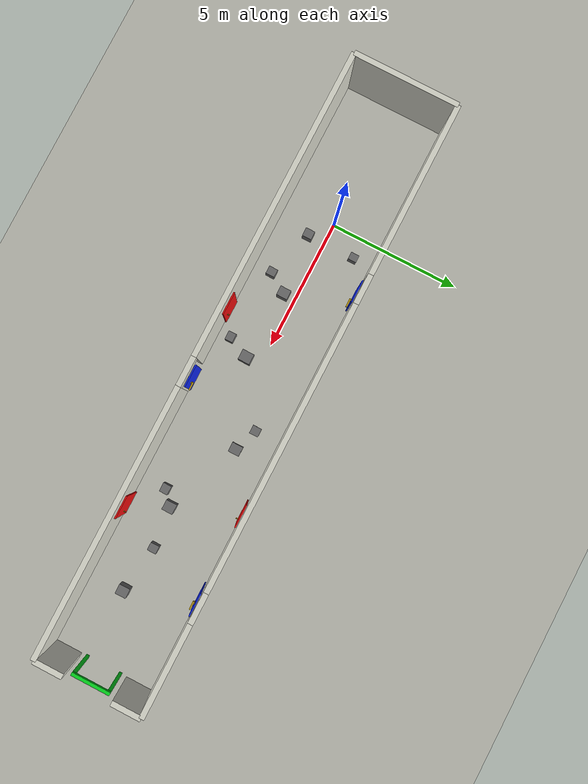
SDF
<?xml version='1.0' encoding='utf-8'?>
<sdf version="1.6">
  <world name="fire_corridor">
    <physics name="default_physics" type="ode">
      <max_step_size>0.001</max_step_size>
      <real_time_update_rate>1000</real_time_update_rate>
    </physics>
    <plugin name="gz::sim::systems::Physics" filename="gz-sim-physics-system" />
    <plugin name="gz::sim::systems::UserCommands" filename="gz-sim-user-commands-system" />
    <plugin name="gz::sim::systems::SceneBroadcaster" filename="gz-sim-scene-broadcaster-system" />
    <plugin name="gz::sim::systems::Sensors" filename="gz-sim-sensors-system"><render_engine>ogre2</render_engine></plugin>
    <light type="directional" name="sun">
      <cast_shadows>true</cast_shadows>
      <pose>6 0 10 0 0 0</pose>
      <diffuse>0.9 0.9 0.9 1</diffuse>
      <specular>0.3 0.3 0.3 1</specular>
      <direction>-0.5 0.1 -1</direction>
    </light>
    <light type="point" name="light_mid">
      <pose>8 0 2.8 0 0 0</pose>
      <diffuse>0.8 0.8 0.8 1</diffuse>
      <specular>0.1 0.1 0.1 1</specular>
      <attenuation><range>16</range><linear>0.05</linear></attenuation>
    </light>

    <model name="ground_plane">
      <static>true</static>
      <link name="link">
        <collision name="col"><geometry><plane><normal>0 0 1</normal><size>30 10</size></plane></geometry></collision>
        <visual name="vis"><geometry><plane><normal>0 0 1</normal><size>30 10</size></plane></geometry>
          <material><ambient>0.72 0.72 0.68 1</ambient><diffuse>0.72 0.72 0.68 1</diffuse></material>
        </visual>
      </link>
    </model>

    <model name="wall_south">
  <static>true</static>
  <pose>6.5 -2 1.25 0 0 0</pose>
  <link name="link">
    <collision name="collision_wall_0">
      <geometry>
        <box>
          <size>11.788571 0.200000 2.500000</size>
        </box>
      </geometry>
      <pose>-5.605714 0 0.000000 0 0 0</pose>
    </collision>
    <visual name="visual_wall_0">
      <geometry>
        <box>
          <size>11.788571 0.200000 2.500000</size>
        </box>
      </geometry>
      <material>
        <ambient>0.85 0.85 0.80 1</ambient>
        <diffuse>0.85 0.85 0.80 1</diffuse>
      </material>
      <pose>-5.605714 0 0.000000 0 0 0</pose>
    </visual>
    <collision name="collision_lintel_0">
      <geometry>
        <box>
          <size>1.116429 0.200000 0.450000</size>
        </box>
      </geometry>
      <pose>0.846786 0 1.025000 0 0 0</pose>
    </collision>
    <visual name="visual_lintel_0">
      <geometry>
        <box>
          <size>1.116429 0.200000 0.450000</size>
        </box>
      </geometry>
      <material>
        <ambient>0.85 0.85 0.80 1</ambient>
        <diffuse>0.85 0.85 0.80 1</diffuse>
      </material>
      <pose>0.846786 0 1.025000 0 0 0</pose>
    </visual>
    <collision name="collision_wall_end">
      <geometry>
        <box>
          <size>10.095000 0.200000 2.500000</size>
        </box>
      </geometry>
      <pose>6.452500 0 0.000000 0 0 0</pose>
    </collision>
    <visual name="visual_wall_end">
      <geometry>
        <box>
          <size>10.095000 0.200000 2.500000</size>
        </box>
      </geometry>
      <material>
        <ambient>0.85 0.85 0.80 1</ambient>
        <diffuse>0.85 0.85 0.80 1</diffuse>
      </material>
      <pose>6.452500 0 0.000000 0 0 0</pose>
    </visual>
  </link>
</model>
    <model name="wall_north">
  <static>true</static>
  <pose>6.5 2 1.25 0 0 0</pose>
  <link name="link">
    <collision name="collision_wall_0">
      <geometry>
        <box>
          <size>6.588571 0.200000 2.500000</size>
        </box>
      </geometry>
      <pose>-8.205714 0 0.000000 0 0 0</pose>
    </collision>
    <visual name="visual_wall_0">
      <geometry>
        <box>
          <size>6.588571 0.200000 2.500000</size>
        </box>
      </geometry>
      <material>
        <ambient>0.85 0.85 0.80 1</ambient>
        <diffuse>0.85 0.85 0.80 1</diffuse>
      </material>
      <pose>-8.205714 0 0.000000 0 0 0</pose>
    </visual>
    <collision name="collision_lintel_0">
      <geometry>
        <box>
          <size>1.116429 0.200000 0.450000</size>
        </box>
      </geometry>
      <pose>-4.353214 0 1.025000 0 0 0</pose>
    </collision>
    <visual name="visual_lintel_0">
      <geometry>
        <box>
          <size>1.116429 0.200000 0.450000</size>
        </box>
      </geometry>
      <material>
        <ambient>0.85 0.85 0.80 1</ambient>
        <diffuse>0.85 0.85 0.80 1</diffuse>
      </material>
      <pose>-4.353214 0 1.025000 0 0 0</pose>
    </visual>
    <collision name="collision_wall_1">
      <geometry>
        <box>
          <size>10.783571 0.200000 2.500000</size>
        </box>
      </geometry>
      <pose>1.596786 0 0.000000 0 0 0</pose>
    </collision>
    <visual name="visual_wall_1">
      <geometry>
        <box>
          <size>10.783571 0.200000 2.500000</size>
        </box>
      </geometry>
      <material>
        <ambient>0.85 0.85 0.80 1</ambient>
        <diffuse>0.85 0.85 0.80 1</diffuse>
      </material>
      <pose>1.596786 0 0.000000 0 0 0</pose>
    </visual>
    <collision name="collision_lintel_1">
      <geometry>
        <box>
          <size>1.116429 0.200000 0.450000</size>
        </box>
      </geometry>
      <pose>7.546786 0 1.025000 0 0 0</pose>
    </collision>
    <visual name="visual_lintel_1">
      <geometry>
        <box>
          <size>1.116429 0.200000 0.450000</size>
        </box>
      </geometry>
      <material>
        <ambient>0.85 0.85 0.80 1</ambient>
        <diffuse>0.85 0.85 0.80 1</diffuse>
      </material>
      <pose>7.546786 0 1.025000 0 0 0</pose>
    </visual>
    <collision name="collision_wall_end">
      <geometry>
        <box>
          <size>3.395000 0.200000 2.500000</size>
        </box>
      </geometry>
      <pose>9.802500 0 0.000000 0 0 0</pose>
    </collision>
    <visual name="visual_wall_end">
      <geometry>
        <box>
          <size>3.395000 0.200000 2.500000</size>
        </box>
      </geometry>
      <material>
        <ambient>0.85 0.85 0.80 1</ambient>
        <diffuse>0.85 0.85 0.80 1</diffuse>
      </material>
      <pose>9.802500 0 0.000000 0 0 0</pose>
    </visual>
  </link>
</model>
    <model name="wall_west"><static>true</static><pose>-5 0 1.25 0 0 0</pose><link name="link">
      <collision name="col"><geometry><box><size>0.2 4 2.5</size></box></geometry></collision>
      <visual name="vis"><geometry><box><size>0.2 4 2.5</size></box></geometry><material><ambient>0.85 0.85 0.80 1</ambient><diffuse>0.85 0.85 0.80 1</diffuse></material></visual>
    </link></model>
    <model name="wall_east_upper"><static>true</static><pose>18 1.45 1.25 0 0 0</pose><link name="link">
      <collision name="col"><geometry><box><size>0.2 1.1 2.5</size></box></geometry></collision>
      <visual name="vis"><geometry><box><size>0.2 1.1 2.5</size></box></geometry><material><ambient>0.85 0.85 0.80 1</ambient><diffuse>0.85 0.85 0.80 1</diffuse></material></visual>
    </link></model>
    <model name="wall_east_lower"><static>true</static><pose>18 -1.45 1.25 0 0 0</pose><link name="link">
      <collision name="col"><geometry><box><size>0.2 1.1 2.5</size></box></geometry></collision>
      <visual name="vis"><geometry><box><size>0.2 1.1 2.5</size></box></geometry><material><ambient>0.85 0.85 0.80 1</ambient><diffuse>0.85 0.85 0.80 1</diffuse></material></visual>
    </link></model>

    <model name="door_red1">
      <static>true</static>
      <pose>4.60 -1.86 1.0 0 0 0</pose>
      <link name="link">
        <visual name="panel">
          <geometry><box><size>0.85 0.045 2.0</size></box></geometry>
          <material><ambient>0.92 0.04 0.04 1</ambient><diffuse>0.92 0.04 0.04 1</diffuse></material>
        </visual>
      </link>
    </model>
    <model name="handle_red1">
      <static>true</static>
      <pose>4.84 -1.82 0.95 1.5708 0 0</pose>
      <link name="link">
        <visual name="handle"><geometry><cylinder><radius>0.018</radius><length>0.13</length></cylinder></geometry><material><ambient>0.75 0.60 0.05 1</ambient><diffuse>0.75 0.60 0.05 1</diffuse></material></visual>
      </link>
    </model>
    <model name="door_blue1">
      <static>false</static>
      <pose>2.2 1.86 1 0 0 0</pose>
      <link name="panel">
        <inertial>
          <mass>2.0</mass>
          <inertia>
            <ixx>0.90</ixx><ixy>0</ixy><ixz>0</ixz>
            <iyy>0.90</iyy><iyz>0</iyz><izz>0.12</izz>
          </inertia>
        </inertial>
        <collision name="panel_collision">
          <geometry><box><size>0.85 0.045 2</size></box></geometry>
          <surface>
            <friction><ode><mu>0.8</mu><mu2>0.8</mu2></ode></friction>
          </surface>
        </collision>
        <visual name="panel">
          <geometry><box><size>0.85 0.045 2</size></box></geometry>
          <material><ambient>0.04 0.14 0.92 1</ambient><diffuse>0.04 0.14 0.92 1</diffuse></material>
        </visual>
        <collision name="handle_collision">
<pose>0.3 -0.074 -0.05 0 0 0</pose>
<geometry><box><size>0.32 0.07 0.055</size></box></geometry>
        </collision>
        <visual name="handle_backplate">
<pose>0.18 -0.032 -0.05 0 0 0</pose>
<geometry><box><size>0.08 0.022 0.28</size></box></geometry>
<material><ambient>0.75 0.60 0.05 1</ambient><diffuse>0.75 0.60 0.05 1</diffuse></material>
        </visual>
        <visual name="handle">
<pose>0.3 -0.078 -0.05 0 0 0</pose>
<geometry><box><size>0.32 0.052 0.052</size></box></geometry>
<material><ambient>0.75 0.60 0.05 1</ambient><diffuse>0.75 0.60 0.05 1</diffuse></material>
        </visual>
      </link>
      <joint name="hinge" type="revolute">
        <pose>-0.425 0 0 0 0 0</pose>
        <parent>world</parent>
        <child>panel</child>
        <axis>
          <xyz>0 0 1</xyz>
          <limit><lower>-2.10</lower><upper>2.10</upper><effort>40</effort><velocity>1.5</velocity></limit>
          <dynamics><damping>1.0</damping><friction>0.05</friction></dynamics>
        </axis>
      </joint>
      <plugin filename="ignition-gazebo-joint-position-controller-system" name="gz::sim::systems::JointPositionController">
        <joint_name>hinge</joint_name>
        <topic>/fire_robot/door/blue/x220/yp186/sn/cmd</topic>
        <p_gain>8.0</p_gain>
        <d_gain>0.4</d_gain>
        <cmd_max>60</cmd_max>
        <cmd_min>-60</cmd_min>
      </plugin>
    </model>
    <model name="door_red2">
      <static>true</static>
      <pose>10.80 1.86 1.0 0 0 0</pose>
      <link name="link">
        <visual name="panel">
          <geometry><box><size>0.85 0.045 2.0</size></box></geometry>
          <material><ambient>0.92 0.04 0.04 1</ambient><diffuse>0.92 0.04 0.04 1</diffuse></material>
        </visual>
      </link>
    </model>
    <model name="handle_red2">
      <static>true</static>
      <pose>11.04 1.82 0.95 1.5708 0 0</pose>
      <link name="link">
        <visual name="handle"><geometry><cylinder><radius>0.018</radius><length>0.13</length></cylinder></geometry><material><ambient>0.75 0.60 0.05 1</ambient><diffuse>0.75 0.60 0.05 1</diffuse></material></visual>
      </link>
    </model>
    <model name="door_blue2">
      <static>false</static>
      <pose>7.4 -1.86 1 0 0 0</pose>
      <link name="panel">
        <inertial>
          <mass>2.0</mass>
          <inertia>
            <ixx>0.90</ixx><ixy>0</ixy><ixz>0</ixz>
            <iyy>0.90</iyy><iyz>0</iyz><izz>0.12</izz>
          </inertia>
        </inertial>
        <collision name="panel_collision">
          <geometry><box><size>0.85 0.045 2</size></box></geometry>
          <surface>
            <friction><ode><mu>0.8</mu><mu2>0.8</mu2></ode></friction>
          </surface>
        </collision>
        <visual name="panel">
          <geometry><box><size>0.85 0.045 2</size></box></geometry>
          <material><ambient>0.04 0.14 0.92 1</ambient><diffuse>0.04 0.14 0.92 1</diffuse></material>
        </visual>
        <collision name="handle_collision">
<pose>0.3 0.074 -0.05 0 0 0</pose>
<geometry><box><size>0.32 0.07 0.055</size></box></geometry>
        </collision>
        <visual name="handle_backplate">
<pose>0.18 0.032 -0.05 0 0 0</pose>
<geometry><box><size>0.08 0.022 0.28</size></box></geometry>
<material><ambient>0.75 0.60 0.05 1</ambient><diffuse>0.75 0.60 0.05 1</diffuse></material>
        </visual>
        <visual name="handle">
<pose>0.3 0.078 -0.05 0 0 0</pose>
<geometry><box><size>0.32 0.052 0.052</size></box></geometry>
<material><ambient>0.75 0.60 0.05 1</ambient><diffuse>0.75 0.60 0.05 1</diffuse></material>
        </visual>
      </link>
      <joint name="hinge" type="revolute">
        <pose>-0.425 0 0 0 0 0</pose>
        <parent>world</parent>
        <child>panel</child>
        <axis>
          <xyz>0 0 1</xyz>
          <limit><lower>-2.10</lower><upper>2.10</upper><effort>40</effort><velocity>1.5</velocity></limit>
          <dynamics><damping>1.0</damping><friction>0.05</friction></dynamics>
        </axis>
      </joint>
      <plugin filename="ignition-gazebo-joint-position-controller-system" name="gz::sim::systems::JointPositionController">
        <joint_name>hinge</joint_name>
        <topic>/fire_robot/door/blue/x740/yn186/sp/cmd</topic>
        <p_gain>8.0</p_gain>
        <d_gain>0.4</d_gain>
        <cmd_max>60</cmd_max>
        <cmd_min>-60</cmd_min>
      </plugin>
    </model>
    <model name="door_blue3">
      <static>false</static>
      <pose>14.1 1.86 1 0 0 0</pose>
      <link name="panel">
        <inertial>
          <mass>2.0</mass>
          <inertia>
            <ixx>0.90</ixx><ixy>0</ixy><ixz>0</ixz>
            <iyy>0.90</iyy><iyz>0</iyz><izz>0.12</izz>
          </inertia>
        </inertial>
        <collision name="panel_collision">
          <geometry><box><size>0.85 0.045 2</size></box></geometry>
          <surface>
            <friction><ode><mu>0.8</mu><mu2>0.8</mu2></ode></friction>
          </surface>
        </collision>
        <visual name="panel">
          <geometry><box><size>0.85 0.045 2</size></box></geometry>
          <material><ambient>0.04 0.14 0.92 1</ambient><diffuse>0.04 0.14 0.92 1</diffuse></material>
        </visual>
        <collision name="handle_collision">
<pose>0.3 -0.074 -0.05 0 0 0</pose>
<geometry><box><size>0.32 0.07 0.055</size></box></geometry>
        </collision>
        <visual name="handle_backplate">
<pose>0.18 -0.032 -0.05 0 0 0</pose>
<geometry><box><size>0.08 0.022 0.28</size></box></geometry>
<material><ambient>0.75 0.60 0.05 1</ambient><diffuse>0.75 0.60 0.05 1</diffuse></material>
        </visual>
        <visual name="handle">
<pose>0.3 -0.078 -0.05 0 0 0</pose>
<geometry><box><size>0.32 0.052 0.052</size></box></geometry>
<material><ambient>0.75 0.60 0.05 1</ambient><diffuse>0.75 0.60 0.05 1</diffuse></material>
        </visual>
      </link>
      <joint name="hinge" type="revolute">
        <pose>-0.425 0 0 0 0 0</pose>
        <parent>world</parent>
        <child>panel</child>
        <axis>
          <xyz>0 0 1</xyz>
          <limit><lower>-2.10</lower><upper>2.10</upper><effort>40</effort><velocity>1.5</velocity></limit>
          <dynamics><damping>1.0</damping><friction>0.05</friction></dynamics>
        </axis>
      </joint>
      <plugin filename="ignition-gazebo-joint-position-controller-system" name="gz::sim::systems::JointPositionController">
        <joint_name>hinge</joint_name>
        <topic>/fire_robot/door/blue/x1410/yp186/sn/cmd</topic>
        <p_gain>8.0</p_gain>
        <d_gain>0.4</d_gain>
        <cmd_max>60</cmd_max>
        <cmd_min>-60</cmd_min>
      </plugin>
    </model>
    <model name="door_red3">
      <static>true</static>
      <pose>12.40 -1.86 1.0 0 0 0</pose>
      <link name="link">
        <visual name="panel">
          <geometry><box><size>0.85 0.045 2.0</size></box></geometry>
          <material><ambient>0.92 0.04 0.04 1</ambient><diffuse>0.92 0.04 0.04 1</diffuse></material>
        </visual>
      </link>
    </model>
    <model name="handle_red3">
      <static>true</static>
      <pose>12.64 -1.82 0.95 1.5708 0 0</pose>
      <link name="link">
        <visual name="handle"><geometry><cylinder><radius>0.018</radius><length>0.13</length></cylinder></geometry><material><ambient>0.75 0.60 0.05 1</ambient><diffuse>0.75 0.60 0.05 1</diffuse></material></visual>
      </link>
    </model>
    <model name="exit_green">
      <static>true</static>
      <pose>17.92 0 1.0 0 0 0</pose>
      <link name="link">
        <visual name="jamb_left"><pose>0.0 0.66 0.0 0.0 0.0 0.0</pose><geometry><box><size>0.12 0.12 2.0</size></box></geometry><material><ambient>0.02 0.85 0.12 1</ambient><diffuse>0.02 0.85 0.12 1</diffuse></material></visual><collision name="jamb_left"><pose>0.0 0.66 0.0 0.0 0.0 0.0</pose><geometry><box><size>0.12 0.12 2.0</size></box></geometry></collision><visual name="jamb_right"><pose>0.0 -0.66 0.0 0.0 0.0 0.0</pose><geometry><box><size>0.12 0.12 2.0</size></box></geometry><material><ambient>0.02 0.85 0.12 1</ambient><diffuse>0.02 0.85 0.12 1</diffuse></material></visual><collision name="jamb_right"><pose>0.0 -0.66 0.0 0.0 0.0 0.0</pose><geometry><box><size>0.12 0.12 2.0</size></box></geometry></collision><visual name="lintel"><pose>0.0 0.0 1.06 0.0 0.0 0.0</pose><geometry><box><size>0.12 1.44 0.12</size></box></geometry><material><ambient>0.02 0.85 0.12 1</ambient><diffuse>0.02 0.85 0.12 1</diffuse></material></visual><collision name="lintel"><pose>0.0 0.0 1.06 0.0 0.0 0.0</pose><geometry><box><size>0.12 1.44 0.12</size></box></geometry></collision></link>
    </model>
    <model name="v5_center_block_00_start">
      <static>true</static>
      <pose>0.80 -0.65 0.22 0 0 0</pose>
      <link name="link">
        <collision name="col"><geometry><box><size>0.32 0.36 0.44</size></box></geometry></collision>
        <visual name="vis">
          <geometry><box><size>0.32 0.36 0.44</size></box></geometry>
          <material><ambient>0.42 0.42 0.42 1</ambient><diffuse>0.42 0.42 0.42 1</diffuse></material>
        </visual>
      </link>
    </model>
    <model name="v5_center_block_01_pre_blue1">
      <static>true</static>
      <pose>3.15 -0.45 0.24 0 0 0</pose>
      <link name="link">
        <collision name="col"><geometry><box><size>0.36 0.42 0.48</size></box></geometry></collision>
        <visual name="vis">
          <geometry><box><size>0.36 0.42 0.48</size></box></geometry>
          <material><ambient>0.42 0.42 0.42 1</ambient><diffuse>0.42 0.42 0.42 1</diffuse></material>
        </visual>
      </link>
    </model>
    <model name="v5_center_block_02_between_blue1_blue2">
      <static>true</static>
      <pose>5.85 -0.58 0.28 0 0 0</pose>
      <link name="link">
        <collision name="col"><geometry><box><size>0.40 0.45 0.56</size></box></geometry></collision>
        <visual name="vis">
          <geometry><box><size>0.40 0.45 0.56</size></box></geometry>
          <material><ambient>0.42 0.42 0.42 1</ambient><diffuse>0.42 0.42 0.42 1</diffuse></material>
        </visual>
      </link>
    </model>
    <model name="v5_center_block_03_pre_blue2">
      <static>true</static>
      <pose>8.95 0.62 0.26 0 0 0</pose>
      <link name="link">
        <collision name="col"><geometry><box><size>0.36 0.42 0.52</size></box></geometry></collision>
        <visual name="vis">
          <geometry><box><size>0.36 0.42 0.52</size></box></geometry>
          <material><ambient>0.42 0.42 0.42 1</ambient><diffuse>0.42 0.42 0.42 1</diffuse></material>
        </visual>
      </link>
    </model>
    <model name="v5_center_block_04_between_blue2_blue3">
      <static>true</static>
      <pose>11.85 -0.52 0.24 0 0 0</pose>
      <link name="link">
        <collision name="col"><geometry><box><size>0.38 0.42 0.48</size></box></geometry></collision>
        <visual name="vis">
          <geometry><box><size>0.38 0.42 0.48</size></box></geometry>
          <material><ambient>0.42 0.42 0.42 1</ambient><diffuse>0.42 0.42 0.42 1</diffuse></material>
        </visual>
      </link>
    </model>
    <model name="v5_center_block_05_after_blue3">
      <static>true</static>
      <pose>15.20 -0.60 0.26 0 0 0</pose>
      <link name="link">
        <collision name="col"><geometry><box><size>0.36 0.42 0.52</size></box></geometry></collision>
        <visual name="vis">
          <geometry><box><size>0.36 0.42 0.52</size></box></geometry>
          <material><ambient>0.42 0.42 0.42 1</ambient><diffuse>0.42 0.42 0.42 1</diffuse></material>
        </visual>
      </link>
    </model>
    <model name="v5_side_clutter_01_right">
      <static>true</static>
      <pose>0.80 1.20 0.18 0 0 0</pose>
      <link name="link">
        <collision name="col"><geometry><box><size>0.28 0.32 0.36</size></box></geometry></collision>
        <visual name="vis">
          <geometry><box><size>0.28 0.32 0.36</size></box></geometry>
          <material><ambient>0.42 0.42 0.42 1</ambient><diffuse>0.42 0.42 0.42 1</diffuse></material>
        </visual>
      </link>
    </model>
    <model name="v5_side_clutter_02_left">
      <static>true</static>
      <pose>2.65 -1.20 0.20 0 0 0</pose>
      <link name="link">
        <collision name="col"><geometry><box><size>0.30 0.34 0.40</size></box></geometry></collision>
        <visual name="vis">
          <geometry><box><size>0.30 0.34 0.40</size></box></geometry>
          <material><ambient>0.42 0.42 0.42 1</ambient><diffuse>0.42 0.42 0.42 1</diffuse></material>
        </visual>
      </link>
    </model>
    <model name="v5_side_clutter_03_right">
      <static>true</static>
      <pose>5.45 -1.42 0.22 0 0 0</pose>
      <link name="link">
        <collision name="col"><geometry><box><size>0.34 0.30 0.44</size></box></geometry></collision>
        <visual name="vis">
          <geometry><box><size>0.34 0.30 0.44</size></box></geometry>
          <material><ambient>0.42 0.42 0.42 1</ambient><diffuse>0.42 0.42 0.42 1</diffuse></material>
        </visual>
      </link>
    </model>
    <model name="v5_side_clutter_04_left">
      <static>true</static>
      <pose>8.05 0.95 0.22 0 0 0</pose>
      <link name="link">
        <collision name="col"><geometry><box><size>0.32 0.34 0.44</size></box></geometry></collision>
        <visual name="vis">
          <geometry><box><size>0.32 0.34 0.44</size></box></geometry>
          <material><ambient>0.42 0.42 0.42 1</ambient><diffuse>0.42 0.42 0.42 1</diffuse></material>
        </visual>
      </link>
    </model>
    <model name="v5_side_clutter_05_right">
      <static>true</static>
      <pose>11.35 -0.95 0.22 0 0 0</pose>
      <link name="link">
        <collision name="col"><geometry><box><size>0.34 0.32 0.44</size></box></geometry></collision>
        <visual name="vis">
          <geometry><box><size>0.34 0.32 0.44</size></box></geometry>
          <material><ambient>0.42 0.42 0.42 1</ambient><diffuse>0.42 0.42 0.42 1</diffuse></material>
        </visual>
      </link>
    </model>
    <model name="v5_side_clutter_06_left">
      <static>true</static>
      <pose>13.40 -0.35 0.20 0 0 0</pose>
      <link name="link">
        <collision name="col"><geometry><box><size>0.30 0.34 0.40</size></box></geometry></collision>
        <visual name="vis">
          <geometry><box><size>0.30 0.34 0.40</size></box></geometry>
          <material><ambient>0.42 0.42 0.42 1</ambient><diffuse>0.42 0.42 0.42 1</diffuse></material>
        </visual>
      </link>
    </model>
  </world>
</sdf>
